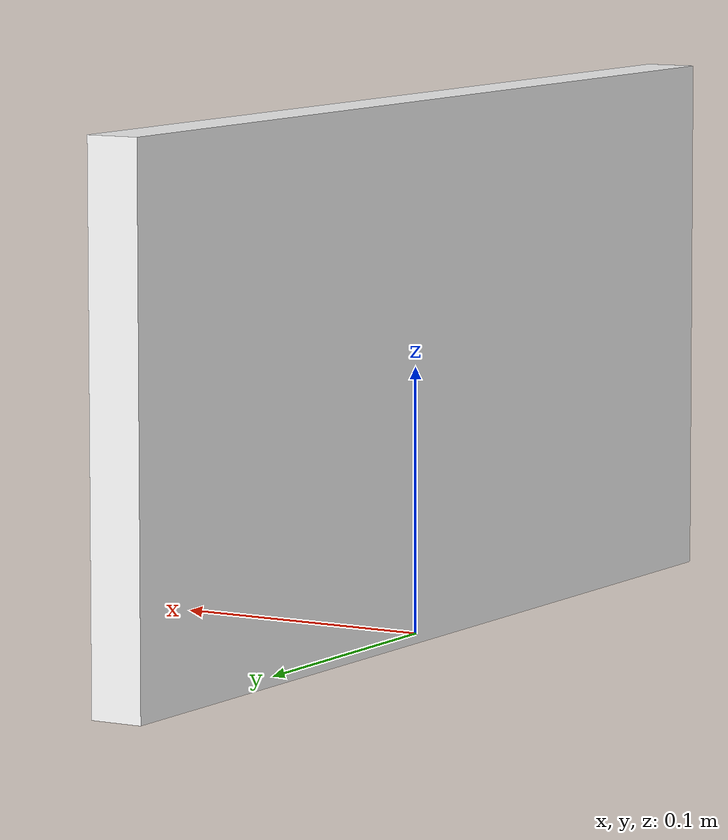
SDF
<?xml version="1.0" ?>
<sdf version="1.6">
  <model name="image_wall">
    <static>true</static>
    <link name="wall_link">
      <pose>0 0 0.1 0 0 0</pose>

      <collision name="wall_collision">
        <geometry>
          <box>
            <size>0.02 0.4 0.2</size>
          </box>
        </geometry>
      </collision>

      <visual name="wall_visual">
        <geometry>
          <box>
            <size>0.02 0.4 0.2</size>
          </box>
        </geometry>
        <material>
          <ambient>1 1 1 1</ambient>
          <diffuse>1 1 1 1</diffuse>
          <specular>0 0 0 1</specular>
          <pbr>
            <metal>
              <albedo_map>model://image_wall3/materials/textures/tv-remote.jpg</albedo_map>
              <metalness>0.0</metalness>
              <roughness>1.0</roughness>
            </metal>
          </pbr>
        </material>
      </visual>
    </link>
  </model>
</sdf>
